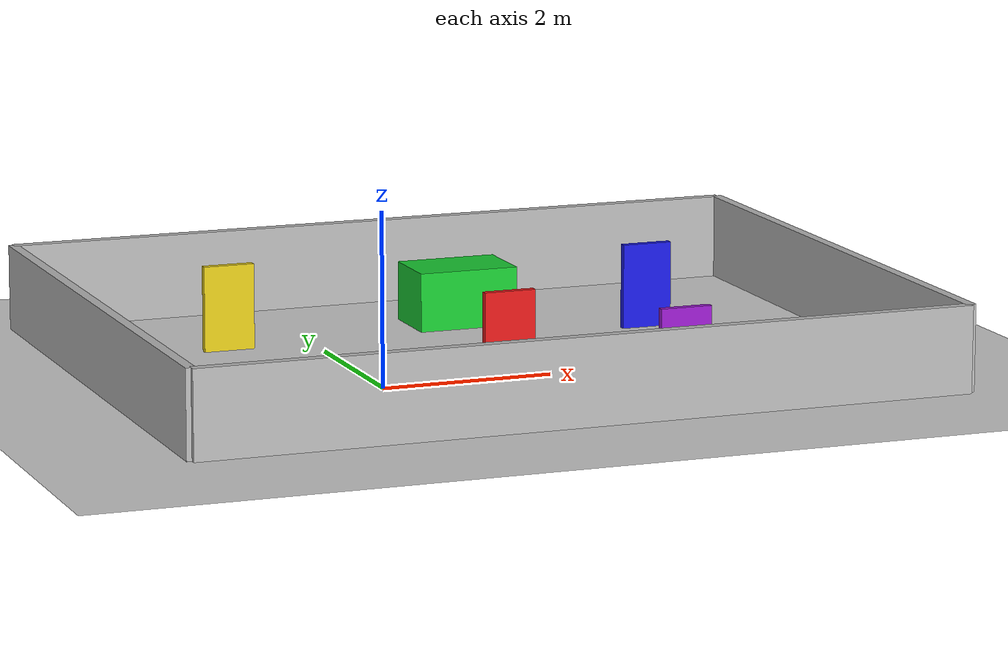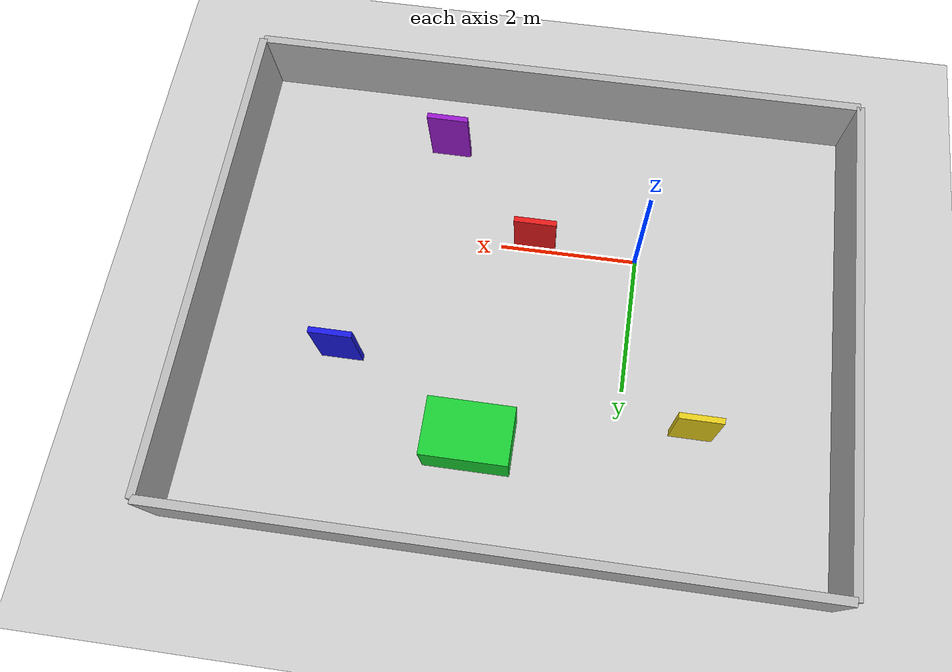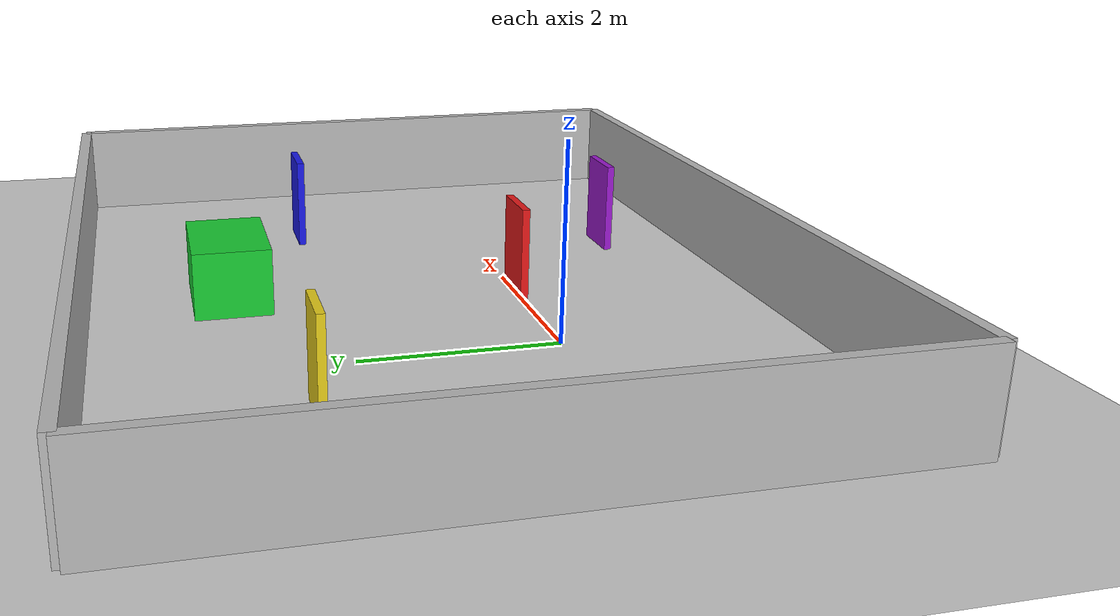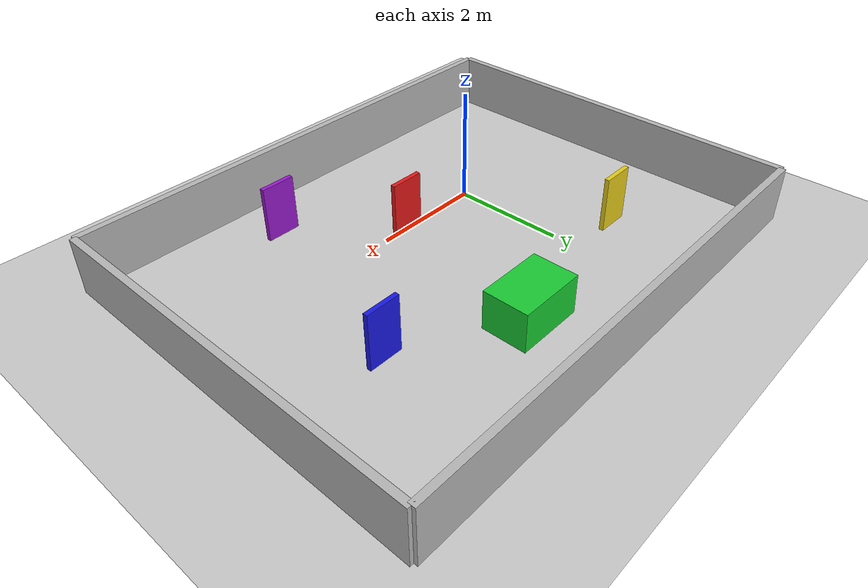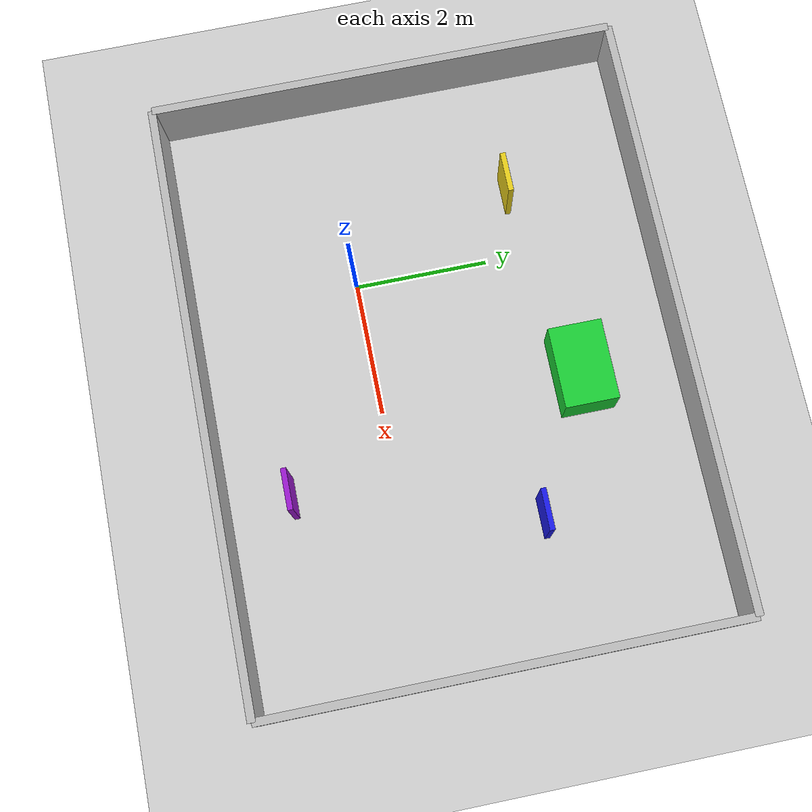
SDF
<?xml version="1.0" ?>
<sdf version="1.6">
  <world name="mwc_pavilion">
    <include>
      <uri>model://sun</uri>
    </include>
    <include>
      <uri>model://ground_plane</uri>
    </include>

    <model name="outer_wall_north">
      <static>true</static>
      <pose>1.5 4.5 0.5 0 0 0</pose>
      <link name="link">
        <collision name="collision">
          <geometry><box><size>9 0.12 1</size></box></geometry>
        </collision>
        <visual name="visual">
          <geometry><box><size>9 0.12 1</size></box></geometry>
        </visual>
      </link>
    </model>

    <model name="outer_wall_south">
      <static>true</static>
      <pose>1.5 -2.5 0.5 0 0 0</pose>
      <link name="link">
        <collision name="collision">
          <geometry><box><size>9 0.12 1</size></box></geometry>
        </collision>
        <visual name="visual">
          <geometry><box><size>9 0.12 1</size></box></geometry>
        </visual>
      </link>
    </model>

    <model name="outer_wall_west">
      <static>true</static>
      <pose>-3 1 0.5 0 0 0</pose>
      <link name="link">
        <collision name="collision">
          <geometry><box><size>0.12 7 1</size></box></geometry>
        </collision>
        <visual name="visual">
          <geometry><box><size>0.12 7 1</size></box></geometry>
        </visual>
      </link>
    </model>

    <model name="outer_wall_east">
      <static>true</static>
      <pose>6 1 0.5 0 0 0</pose>
      <link name="link">
        <collision name="collision">
          <geometry><box><size>0.12 7 1</size></box></geometry>
        </collision>
        <visual name="visual">
          <geometry><box><size>0.12 7 1</size></box></geometry>
        </visual>
      </link>
    </model>

    <model name="stand_robotica_block">
      <static>true</static>
      <pose>2 3 0.35 0 0 0</pose>
      <link name="link">
        <collision name="collision">
          <geometry><box><size>1.2 0.8 0.7</size></box></geometry>
        </collision>
        <visual name="visual">
          <geometry><box><size>1.2 0.8 0.7</size></box></geometry>
          <material>
            <ambient>0.1 0.8 0.2 1</ambient>
            <diffuse>0.1 0.8 0.2 1</diffuse>
          </material>
        </visual>
      </link>
    </model>

    <model name="auditorio_marker">
      <static>true</static>
      <pose>4 2 0.5 0 0 0</pose>
      <link name="link">
        <visual name="visual">
          <geometry><box><size>0.6 0.08 1.0</size></box></geometry>
          <material>
            <ambient>0.1 0.1 0.9 1</ambient>
            <diffuse>0.1 0.1 0.9 1</diffuse>
          </material>
        </visual>
      </link>
    </model>

    <model name="entrada_marker">
      <static>true</static>
      <pose>1.5 0 0.5 0 0 0</pose>
      <link name="link">
        <visual name="visual">
          <geometry><box><size>0.6 0.08 1.0</size></box></geometry>
          <material>
            <ambient>0.9 0.1 0.1 1</ambient>
            <diffuse>0.9 0.1 0.1 1</diffuse>
          </material>
        </visual>
      </link>
    </model>

    <model name="cafeteria_marker">
      <static>true</static>
      <pose>-1 2.5 0.5 0 0 0</pose>
      <link name="link">
        <visual name="visual">
          <geometry><box><size>0.6 0.08 1.0</size></box></geometry>
          <material>
            <ambient>0.9 0.8 0.1 1</ambient>
            <diffuse>0.9 0.8 0.1 1</diffuse>
          </material>
        </visual>
      </link>
    </model>

    <model name="networking_marker">
      <static>true</static>
      <pose>3 -1.5 0.5 0 0 0</pose>
      <link name="link">
        <visual name="visual">
          <geometry><box><size>0.6 0.08 1.0</size></box></geometry>
          <material>
            <ambient>0.6 0.1 0.8 1</ambient>
            <diffuse>0.6 0.1 0.8 1</diffuse>
          </material>
        </visual>
      </link>
    </model>
  </world>
</sdf>
